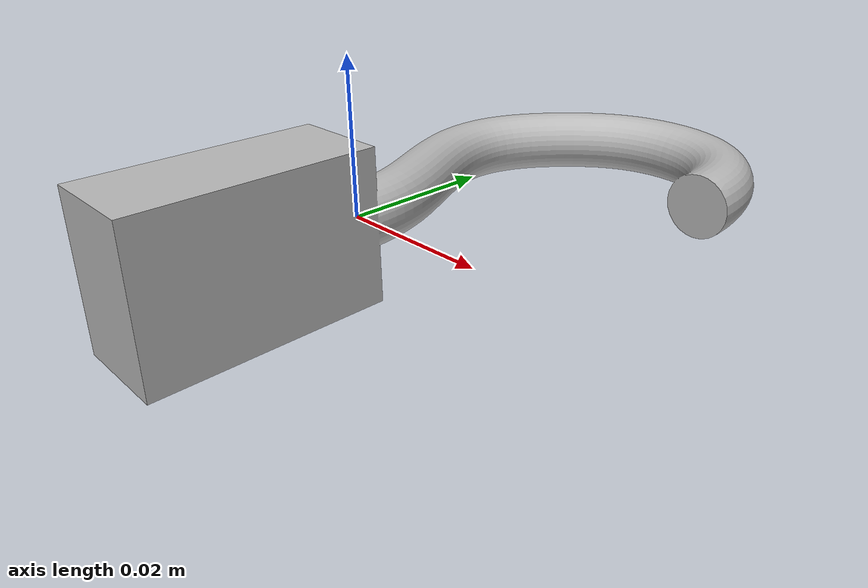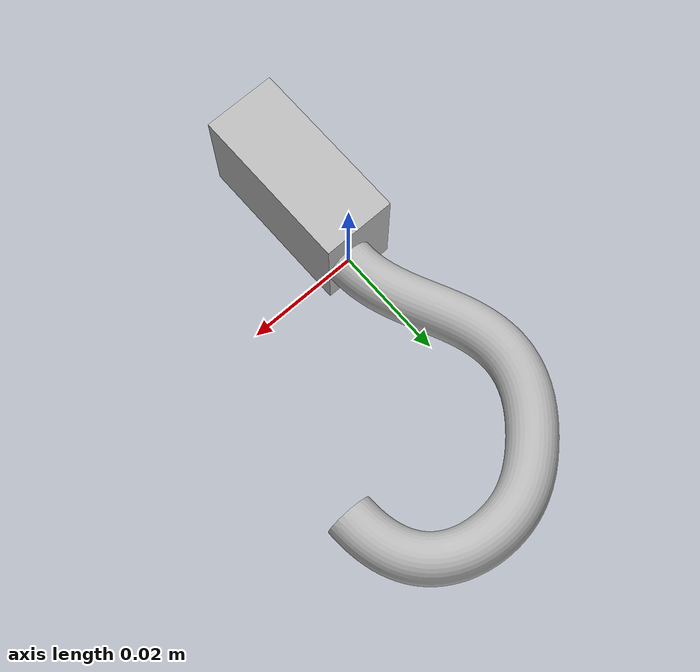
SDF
<?xml version='1.0'?>
<sdf version="1.4">
  <model name="hook">
    <!-- TODO: make this so that the base of the hook is 0 -->
    <link name="hook_link">
      <inertial>
        <mass>1.0</mass>
        <inertia> <!-- inertias are tricky to compute -->
          <!-- http://gazebosim.org/tutorials?tut=inertia&cat=build_robot -->
          <ixx>0.083</ixx>       <!-- for a box: ixx = 0.083 * mass * (y*y + z*z) -->
          <ixy>0.0</ixy>         <!-- for a box: ixy = 0 -->
          <ixz>0.0</ixz>         <!-- for a box: ixz = 0 -->
          <iyy>0.083</iyy>       <!-- for a box: iyy = 0.083 * mass * (x*x + z*z) -->
          <iyz>0.0</iyz>         <!-- for a box: iyz = 0 -->
          <izz>0.083</izz>       <!-- for a box: izz = 0.083 * mass * (x*x + y*y) -->
        </inertia>
      </inertial>
      <collision name="collision">
        <geometry>
          <mesh>
          <!-- TODO: make this so that the base of the hook is 0 -->
            <scale>1 1 1</scale>
            <uri>meshes/hook.obj</uri>
          </mesh>
        </geometry>
      </collision>
      <visual name="visual">
        <geometry>
          <mesh>
            <scale>1 1 1</scale>
            <uri>meshes/hook.obj</uri>
          </mesh>
        </geometry>
      </visual>
    </link>
  </model>
</sdf>
